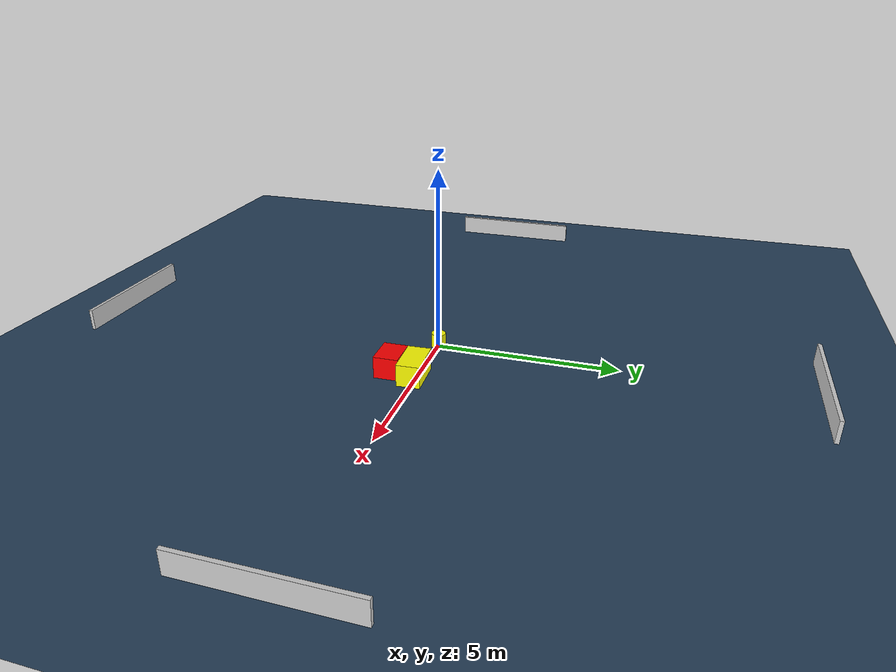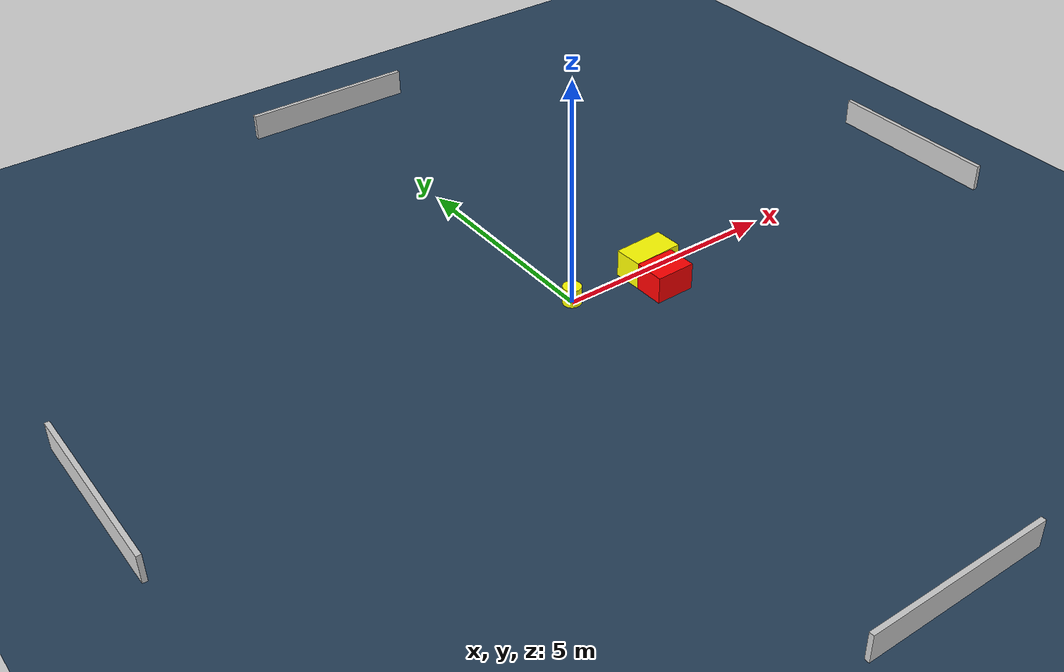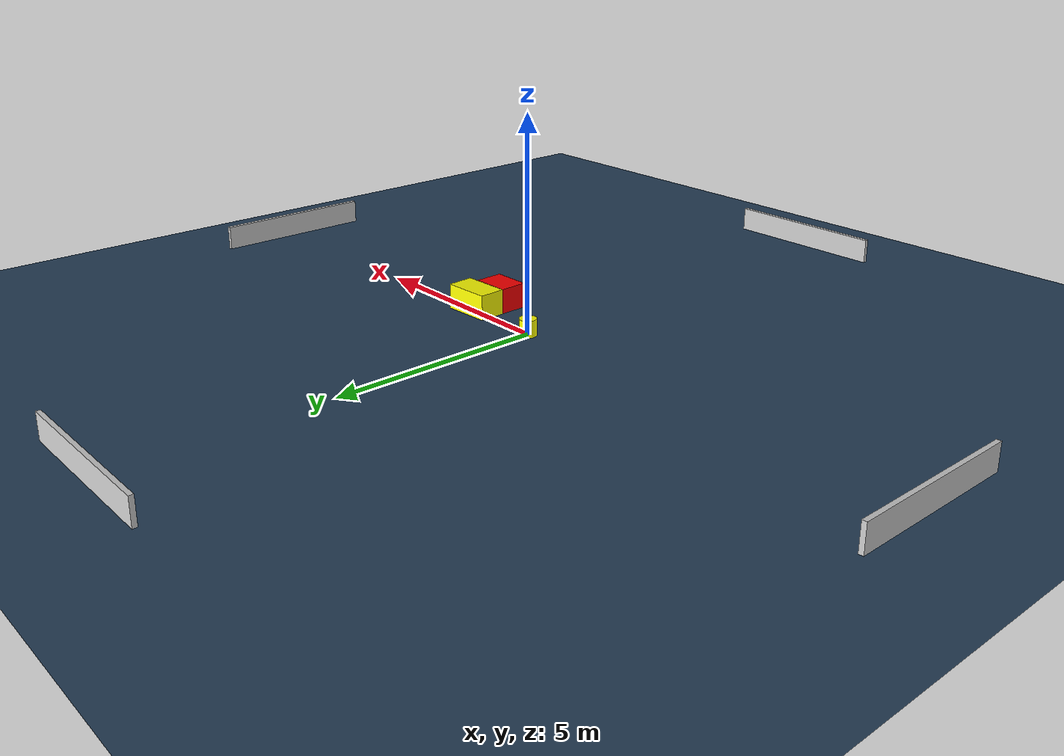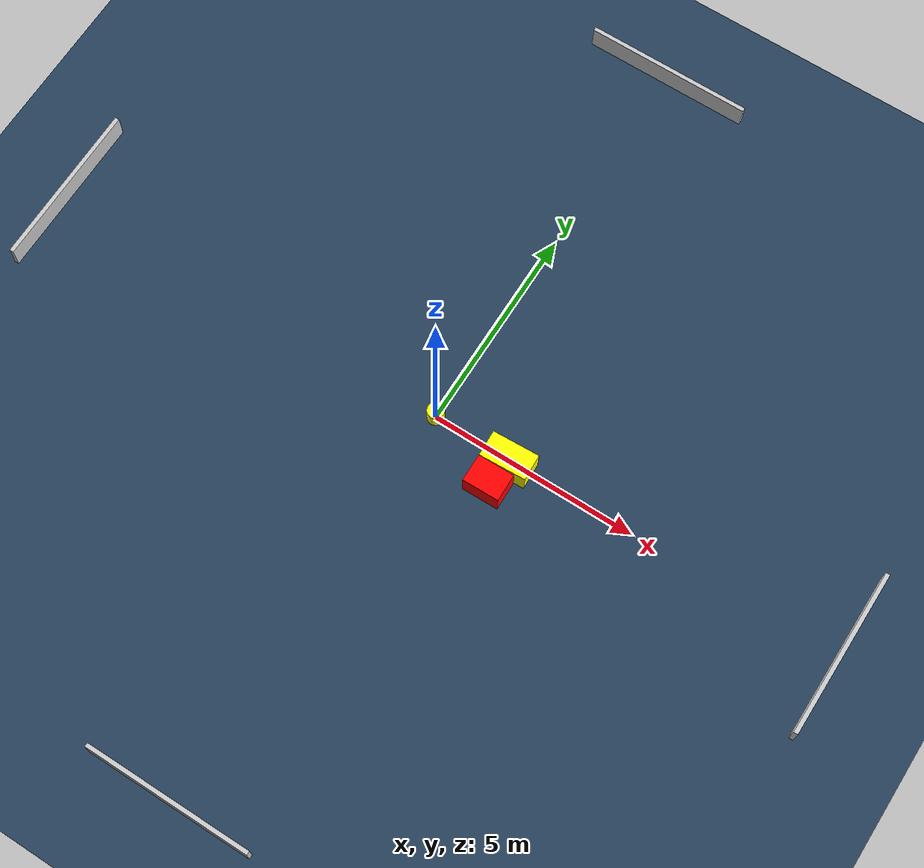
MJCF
<?xml version="1.0" ?>
<mujoco model="generated_environment">
  <option timestep="0.01" integrator="RK4" cone="elliptic"/>
  <default>
    <geom density="1"/>
  </default>
  <asset>
    <texture builtin="gradient" height="3072" name="skybox" rgb1="0.3 0.5 0.7" rgb2="0 0 0" type="skybox" width="512"/>
    <texture builtin="checker" height="300" name="groundplane" rgb1="0.2 0.3 0.4" rgb2="0.1 0.2 0.3" type="2d" width="300"/>
    <material name="groundplane" reflectance="0.2" texrepeat="5 5" texture="groundplane"/>
  </asset>
  <worldbody>
    <light dir="0 0 -1" directional="true" pos="0 0 1.5"/>
    <geom condim="3" friction="0.5 0.005 0.001" material="groundplane" name="floor" pos="0 0 0" size="0 0 0.05" type="plane"/>
    <body name="walls">
      <geom name="wall_1" condim="4" pos="-10.0 0.0 0.3" rgba="0.800000011920929 0.800000011920929 0.800000011920929 1.0" size="0.05 2.0 0.3" type="box"/>
      <geom name="wall_2" condim="4" pos="10.0 0.0 0.3" rgba="0.800000011920929 0.800000011920929 0.800000011920929 1.0" size="0.05 2.0 0.3" type="box"/>
      <geom name="wall_3" condim="4" pos="0.0 -10.0 0.3" rgba="0.800000011920929 0.800000011920929 0.800000011920929 1.0" size="2.0 0.05 0.3" type="box"/>
      <geom name="wall_4" condim="4" pos="0.0 10.0 0.3" rgba="0.800000011920929 0.800000011920929 0.800000011920929 1.0" size="2.0 0.05 0.3" type="box"/>
    </body>
    <body name="robot">
      <joint name="joint_x" type="slide" pos="0 0 0" axis="1 0 0"/>
      <joint name="joint_y" type="slide" pos="0 0 0" axis="0 1 0"/>
      <geom name="robot" type="cylinder" pos="0.0 0.0 0.2" size="0.2 0.2 0.0" mass="5.0" friction="1.0 0.005 0.0001" condim="4" rgba="1.0 1.0 0.0 1.0"/>
    </body>
    <body name="obstacle_1_movable">
      <geom name="obstacle_1_movable" condim="4" pos="1.9201193840422974 -0.072577985806593 0.3" euler="0 0 272.56641907567905" friction="0.0 0.005 0.001" rgba="1.0 1.0 0.0 1.0" size="0.3147472073292384 0.5623273561126522 0.3" type="box" mass="0.1"/>
      <joint type="free"/>
    </body>
    <body name="obstacle_2_static">
      <geom name="obstacle_2_static" condim="4" pos="1.8148941358344652 -0.7426419042105034 0.3" euler="0 0 90.93516689386497" friction="0.0 0.005 0.001" rgba="1.0 0.0 0.0 1.0" size="0.333976514733012 0.4413300401921689 0.3" type="box"/>
    </body>
  </worldbody>
  <actuator>
    <motor name="actuator_x" joint="joint_x" gear="1" ctrlrange="-1 1"/>
    <motor name="actuator_y" joint="joint_y" gear="1" ctrlrange="-1 1"/>
  </actuator>
</mujoco>
